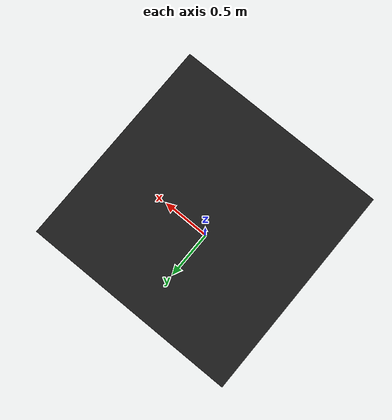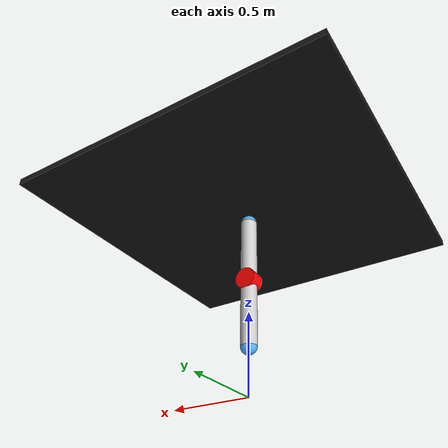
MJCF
<?xml version="1.0" encoding="utf-8"?>
<mujoco model="simple_model">
  <option gravity="0 0 -9.8" timestep="0.002"/>
  <default>
    <joint damping="0.05"/>
  </default>

  <size njmax="500" nconmax="100"/>
  <contact>
    <exclude body1="Ball1" body2="Leg1"/>
    <exclude body1="Leg1" body2="Joint1"/>
    <exclude body1="Leg2" body2="Ball2"/>
  </contact>

  <asset>
    <texture type="skybox" builtin="flat" rgb1="1 1 1" rgb2="1 1 1" width="16" height="16"/>
  </asset>

  <worldbody>
    <camera name="sideview" pos="0 -2 1" xyaxes="1 0 0 0 0 1"/>

    <!-- 天井 -->
    <geom name="ceiling" type="box" size="1 1 0.02" pos="0 0 1.2"
          rgba="0.1 0.1 0.1 1" contype="0" conaffinity="0"/>

    <!-- Ball1（支点） -->
    <body name="Ball1" pos="0 0 1.13">
      <inertial pos="0 0 0" mass="0.3" diaginertia="0.001 0.001 0.001"/>
      <geom type="sphere" size="0.05" rgba="0.3 0.7 1 1" contype="0" conaffinity="0"/>
      <joint name="ball1_joint" type="hinge" axis="0 1 0" range="-180 180" damping="0.05"/>

      <!-- Leg1 -->
      <body name="Leg1" pos="0 0 -0.2">
        <inertial pos="0 0 0" mass="0.5" diaginertia="0.002 0.002 0.002"/>
        <geom type="cylinder" size="0.05 0.2" rgba="0.8 0.8 0.8 1" contype="0" conaffinity="0"/>

        <!-- Joint1 -->
        <body name="Joint1" pos="0 0 -0.22">
          <joint name="joint1" type="hinge" axis="0 1 0" range="-180 180" damping="0.01"/>
          <geom type="cylinder" size="0.065 0.05" rgba="1 0 0 1" euler="90 0 0" contype="0" conaffinity="0"/>

          <!-- Leg2 -->
          <body name="Leg2" pos="0 0 -0.22">
            <inertial pos="0 0 0" mass="0.5" diaginertia="0.002 0.002 0.002"/>
            <geom type="cylinder" size="0.05 0.2" rgba="0.8 0.8 0.8 1" contype="0" conaffinity="0"/>

            <!-- Ball2 -->
            <body name="Ball2" pos="0 0 -0.2">
              <inertial pos="0 0 0" mass="0.3" diaginertia="0.001 0.001 0.001"/>
              <joint name="joint2" type="hinge" axis="0 1 0" range="-180 180" damping="0.05"/>
              <geom type="sphere" size="0.05" rgba="0.3 0.7 1 1" contype="0" conaffinity="0"/>
            </body>
          </body>
        </body>
      </body>
    </body>
  </worldbody>

  <actuator>
    <motor joint="ball1_joint" forcelimited="true" forcerange="-1.5 1.5" gear="1"/>
    <motor joint="joint1" forcelimited="true" forcerange="-2.5 2.5" gear="1"/>
    <motor joint="joint2" forcelimited="true" forcerange="-2.5 2.5" gear="1"/>
  </actuator>
</mujoco>
